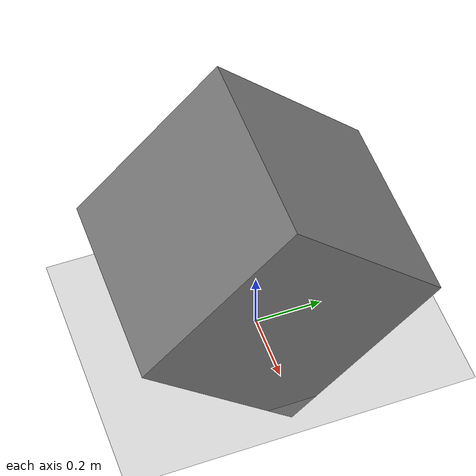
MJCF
<mujoco model="box_plane_tilted_pen">
            <option gravity="0 0 0" timestep="0.001"/>
            <worldbody>
                <geom name="floor" type="plane" size="10 10 0.1"/>
                <body name="box" pos="0 0 0.35" euler="45 0 0">
                    <joint type="free"/>
                    <geom type="box" size="0.3 0.3 0.3"/>
                </body>
            </worldbody>
        </mujoco>
